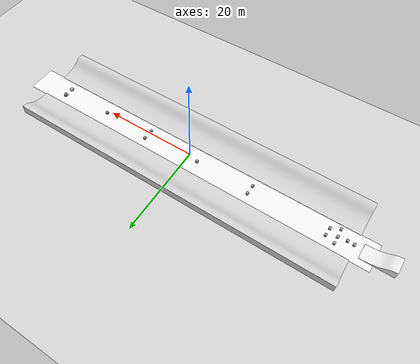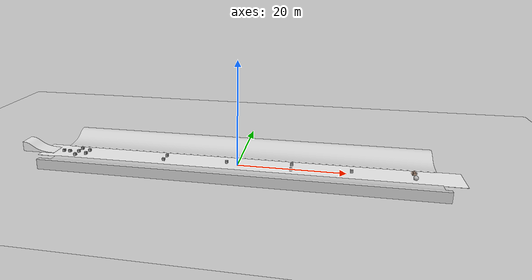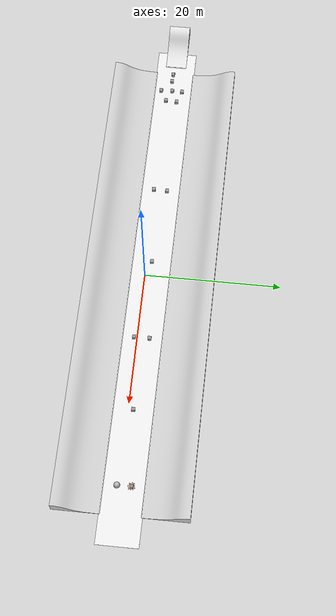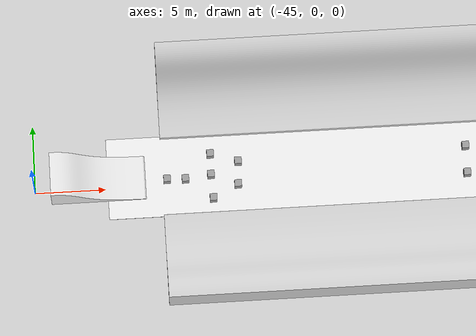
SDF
<sdf version="1.6">
 <world name="default">
  <light name="sun" type="directional">
   <pose>0 0 10 0 -0 0</pose>
   <diffuse>0.8 0.8 0.8 1</diffuse>
   <specular>0.2 0.2 0.2 1</specular>
   <attenuation>
    <range>1000</range>
    <constant>0.9</constant>
    <linear>0.01</linear>
    <quadratic>0.001</quadratic>
   </attenuation>
   <direction>-0.5 0.1 -0.9</direction>
  </light>
  <model name="ground_plane">
   <static>1</static>
   <link name="link">
    <collision name="collision">
     <geometry><plane><normal>0 0 1</normal><size>100 100</size></plane></geometry>
     <surface>
      <contact><collide_bitmask>65535</collide_bitmask></contact>
      <friction><ode><mu>100</mu><mu2>50</mu2></ode></friction>
     </surface>
    </collision>
    <visual name="visual">
     <cast_shadows>0</cast_shadows>
     <geometry><plane><normal>0 0 1</normal><size>100 100</size></plane></geometry>
     <material>
      <ambient>0.9 0.9 0.9 0</ambient>
      <diffuse>0.8 0.8 0.8 0</diffuse>
      <specular>0.1 0.1 0.1 0</specular>
      <emissive>0 0 0 0</emissive>
     </material>
    </visual>
   </link>
  </model>
  <gravity>0 0 -9.8</gravity>
  <magnetic_field>6e-06 2.3e-05 -4.2e-05</magnetic_field>
  <atmosphere type="adiabatic"/>
  <physics name="default_physics" default="0" type="ode">
   <max_step_size>0.001</max_step_size>
   <real_time_factor>1</real_time_factor>
   <real_time_update_rate>1000</real_time_update_rate>
  </physics>
  <scene><ambient>0.4 0.4 0.4 1</ambient><background>0.9 0.9 0.9 1</background><shadows>1</shadows></scene>
  <spherical_coordinates>
   <surface_model>EARTH_WGS84</surface_model>
   <latitude_deg>0</latitude_deg>
   <longitude_deg>0</longitude_deg>
   <elevation>0</elevation>
   <heading_deg>0</heading_deg>
  </spherical_coordinates>
  <model name="road_dashed_two_white">
   <static>1</static>
   <link name="link">
    <collision name="collision"><geometry><box><size>80 6 0.02</size></box></geometry></collision>
    <visual name="visual">
     <cast_shadows>0</cast_shadows>
     <geometry><box><size>80 6 0.02</size></box></geometry>
     <material>
      <script>
       <uri>model://road_dashed_two_white/materials/scripts</uri>
       <uri>model://road_dashed_two_white/materials/textures</uri>
       <name>DashedTwoWhite</name>
      </script>
     </material>
    </visual>
   </link>
   <pose>0.139726 0.762702 0 0 -0 0</pose>
  </model>
  <model name="side_slope">
   <static>1</static>
   <link name="slope_1">
    <collision name="collision">
     <geometry><mesh><uri>model://side_slope/meshes/side_slope.dae</uri><scale>36 1.5 1.5</scale></mesh></geometry>
    </collision>
    <visual name="visual">
     <geometry><mesh><uri>model://side_slope/meshes/side_slope.dae</uri><scale>36 1.5 1.5</scale></mesh></geometry>
     <material>
      <ambient>0.7 0.7 0.7 1</ambient>
      <diffuse>0.8 0.8 0.8 1</diffuse>
      <specular>0.1 0.1 0.1 1</specular>
      <emissive>0 0 0 0</emissive>
     </material>
    </visual>
   </link>
   <link name="slope_2">
    <pose>0 12.3 0 0 -0 -3.14159</pose>
    <collision name="collision">
     <geometry><mesh><uri>model://side_slope/meshes/side_slope.dae</uri><scale>36 1.5 1.5</scale></mesh></geometry>
    </collision>
    <visual name="visual">
     <geometry><mesh><uri>model://side_slope/meshes/side_slope.dae</uri><scale>36 1.5 1.5</scale></mesh></geometry>
     <material>
      <ambient>0.7 0.7 0.7 1</ambient>
      <diffuse>0.8 0.8 0.8 1</diffuse>
      <specular>0.1 0.1 0.1 1</specular>
      <emissive>0 0 0 0</emissive>
     </material>
    </visual>
   </link>
   <pose>0 -5.40299 0 0 -0 0</pose>
  </model>
  <model name="unit_box">
   <pose>31.8605 -0.218029 0.26 0 -0 0</pose>
   <link name="link">
    <inertial>
     <mass>1</mass>
     <inertia>
      <ixx>0.166667</ixx>
      <ixy>0</ixy>
      <ixz>0</ixz>
      <iyy>0.166667</iyy>
      <iyz>0</iyz>
      <izz>0.166667</izz>
     </inertia>
    </inertial>
    <collision name="collision"><geometry><box><size>0.5 0.5 0.5</size></box></geometry></collision>
    <visual name="visual">
     <geometry><box><size>0.5 0.5 0.5</size></box></geometry>
     <material>
      <script><name>Gazebo/Grey</name><uri>file://media/materials/scripts/gazebo.material</uri></script>
     </material>
    </visual>
    <visual name="visual_sphere_cue">
     <geometry><sphere><radius>0.45</radius></sphere></geometry>
     <plugin name="blink" filename="libBlinkVisualPlugin.so">
      <color_a>0 1 0 0.15</color_a>
      <color_b>0 1 0 0.15</color_b>
      <period>2</period>
      <use_wall_time>true</use_wall_time>
     </plugin>
     <material>
      <script><uri>file://media/materials/scripts/gazebo.material</uri><name>__default__</name></script>
     </material>
    </visual>
   </link>
  </model>
  <model name="unit_box_clone">
   <pose>10.0063 -0.431766 0.26 0 -0 0</pose>
   <link name="link">
    <inertial>
     <mass>1</mass>
     <inertia>
      <ixx>0.166667</ixx>
      <ixy>0</ixy>
      <ixz>0</ixz>
      <iyy>0.166667</iyy>
      <iyz>0</iyz>
      <izz>0.166667</izz>
     </inertia>
    </inertial>
    <collision name="collision"><geometry><box><size>0.5 0.5 0.5</size></box></geometry></collision>
    <visual name="visual">
     <geometry><box><size>0.5 0.5 0.5</size></box></geometry>
     <material>
      <script><name>Gazebo/Grey</name><uri>file://media/materials/scripts/gazebo.material</uri></script>
     </material>
    </visual>
   </link>
  </model>
  <model name="unit_box_clone_0">
   <pose>31.861 1.79872 0.26 0 -0 0</pose>
   <link name="link">
    <inertial>
     <mass>1</mass>
     <inertia>
      <ixx>0.166667</ixx>
      <ixy>0</ixy>
      <ixz>0</ixz>
      <iyy>0.166667</iyy>
      <iyz>0</iyz>
      <izz>0.166667</izz>
     </inertia>
    </inertial>
    <collision name="collision"><geometry><box><size>0.5 0.5 0.5</size></box></geometry></collision>
    <visual name="visual">
     <geometry><box><size>0.5 0.5 0.5</size></box></geometry>
     <material>
      <script><name>Gazebo/Grey</name><uri>file://media/materials/scripts/gazebo.material</uri></script>
     </material>
    </visual>
    <visual name="visual_cue">
     <geometry><mesh><uri>model://repelling_cue_2.dae</uri><scale>0.8 0.8 0.8</scale></mesh></geometry>
     <material>
      <ambient>1 0.4 0 0.2</ambient>
      <diffuse>1 0.4 0 0.2</diffuse>
      <specular>1 0.4 0 0.5</specular>
      <emissive>0 0 0 0</emissive>
     </material>
    </visual>
   </link>
  </model>
  <model name="unit_box_clone_1">
   <pose>20.894 0.73493 0.26 0 -0 0</pose>
   <link name="link">
    <inertial>
     <mass>1</mass>
     <inertia>
      <ixx>0.166667</ixx>
      <ixy>0</ixy>
      <ixz>0</ixz>
      <iyy>0.166667</iyy>
      <iyz>0</iyz>
      <izz>0.166667</izz>
     </inertia>
    </inertial>
    <collision name="collision"><geometry><box><size>0.5 0.5 0.5</size></box></geometry></collision>
    <visual name="visual">
     <geometry><box><size>0.5 0.5 0.5</size></box></geometry>
     <material>
      <script><name>Gazebo/Grey</name><uri>file://media/materials/scripts/gazebo.material</uri></script>
     </material>
    </visual>
   </link>
  </model>
  <model name="unit_box_clone_2">
   <pose>-2.26382 0.775278 0.26 0 -0 0</pose>
   <link name="link">
    <inertial>
     <mass>1</mass>
     <inertia>
      <ixx>0.166667</ixx>
      <ixy>0</ixy>
      <ixz>0</ixz>
      <iyy>0.166667</iyy>
      <iyz>0</iyz>
      <izz>0.166667</izz>
     </inertia>
    </inertial>
    <collision name="collision"><geometry><box><size>0.5 0.5 0.5</size></box></geometry></collision>
    <visual name="visual">
     <geometry><box><size>0.5 0.5 0.5</size></box></geometry>
     <material>
      <script><name>Gazebo/Grey</name><uri>file://media/materials/scripts/gazebo.material</uri></script>
     </material>
    </visual>
   </link>
  </model>
  <model name="unit_box_clone_3">
   <pose>9.99396 1.78579 0.26 0 -0 0</pose>
   <link name="link">
    <inertial>
     <mass>1</mass>
     <inertia>
      <ixx>0.166667</ixx>
      <ixy>0</ixy>
      <ixz>0</ixz>
      <iyy>0.166667</iyy>
      <iyz>0</iyz>
      <izz>0.166667</izz>
     </inertia>
    </inertial>
    <collision name="collision"><geometry><box><size>0.5 0.5 0.5</size></box></geometry></collision>
    <visual name="visual">
     <geometry><box><size>0.5 0.5 0.5</size></box></geometry>
     <material>
      <script><name>Gazebo/Grey</name><uri>file://media/materials/scripts/gazebo.material</uri></script>
     </material>
    </visual>
   </link>
  </model>
  <model name="unit_box_clone_4">
   <pose>-14.3827 1.72399 0.26 0 -0 0</pose>
   <link name="link">
    <inertial>
     <mass>1</mass>
     <inertia>
      <ixx>0.166667</ixx>
      <ixy>0</ixy>
      <ixz>0</ixz>
      <iyy>0.166667</iyy>
      <iyz>0</iyz>
      <izz>0.166667</izz>
     </inertia>
    </inertial>
    <collision name="collision"><geometry><box><size>0.5 0.5 0.5</size></box></geometry></collision>
    <visual name="visual">
     <geometry><box><size>0.5 0.5 0.5</size></box></geometry>
     <material>
      <script><name>Gazebo/Grey</name><uri>file://media/materials/scripts/gazebo.material</uri></script>
     </material>
    </visual>
   </link>
  </model>
  <model name="unit_box_clone_5">
   <pose>-14.4278 -0.300483 0.26 0 -0 0</pose>
   <link name="link">
    <inertial>
     <mass>1</mass>
     <inertia>
      <ixx>0.166667</ixx>
      <ixy>0</ixy>
      <ixz>0</ixz>
      <iyy>0.166667</iyy>
      <iyz>0</iyz>
      <izz>0.166667</izz>
     </inertia>
    </inertial>
    <collision name="collision"><geometry><box><size>0.5 0.5 0.5</size></box></geometry></collision>
    <visual name="visual">
     <geometry><box><size>0.5 0.5 0.5</size></box></geometry>
     <material>
      <script><name>Gazebo/Grey</name><uri>file://media/materials/scripts/gazebo.material</uri></script>
     </material>
    </visual>
   </link>
  </model>
  <model name="unit_box_clone_6">
   <pose>-30.655 -0.188792 0.26 0 -0 0</pose>
   <link name="link">
    <inertial>
     <mass>1</mass>
     <inertia>
      <ixx>0.166667</ixx>
      <ixy>0</ixy>
      <ixz>0</ixz>
      <iyy>0.166667</iyy>
      <iyz>0</iyz>
      <izz>0.166667</izz>
     </inertia>
    </inertial>
    <collision name="collision"><geometry><box><size>0.5 0.5 0.5</size></box></geometry></collision>
    <visual name="visual">
     <geometry><box><size>0.5 0.5 0.5</size></box></geometry>
     <material>
      <script><name>Gazebo/Grey</name><uri>file://media/materials/scripts/gazebo.material</uri></script>
     </material>
    </visual>
   </link>
  </model>
  <model name="unit_box_clone_7">
   <pose>-30.5613 1.50909 0.26 0 -0 0</pose>
   <link name="link">
    <inertial>
     <mass>1</mass>
     <inertia>
      <ixx>0.166667</ixx>
      <ixy>0</ixy>
      <ixz>0</ixz>
      <iyy>0.166667</iyy>
      <iyz>0</iyz>
      <izz>0.166667</izz>
     </inertia>
    </inertial>
    <collision name="collision"><geometry><box><size>0.5 0.5 0.5</size></box></geometry></collision>
    <visual name="visual">
     <geometry><box><size>0.5 0.5 0.5</size></box></geometry>
     <material>
      <script><name>Gazebo/Grey</name><uri>file://media/materials/scripts/gazebo.material</uri></script>
     </material>
    </visual>
   </link>
  </model>
  <model name="unit_box_clone_8">
   <pose>-32.4546 -1.12878 0.26 0 -0 0</pose>
   <link name="link">
    <inertial>
     <mass>1</mass>
     <inertia>
      <ixx>0.166667</ixx>
      <ixy>0</ixy>
      <ixz>0</ixz>
      <iyy>0.166667</iyy>
      <iyz>0</iyz>
      <izz>0.166667</izz>
     </inertia>
    </inertial>
    <collision name="collision"><geometry><box><size>0.5 0.5 0.5</size></box></geometry></collision>
    <visual name="visual">
     <geometry><box><size>0.5 0.5 0.5</size></box></geometry>
     <material>
      <script><name>Gazebo/Grey</name><uri>file://media/materials/scripts/gazebo.material</uri></script>
     </material>
    </visual>
   </link>
  </model>
  <model name="unit_box_clone_9">
   <pose>-32.5331 0.632789 0.26 0 -0 0</pose>
   <link name="link">
    <inertial>
     <mass>1</mass>
     <inertia>
      <ixx>0.166667</ixx>
      <ixy>0</ixy>
      <ixz>0</ixz>
      <iyy>0.166667</iyy>
      <iyz>0</iyz>
      <izz>0.166667</izz>
     </inertia>
    </inertial>
    <collision name="collision"><geometry><box><size>0.5 0.5 0.5</size></box></geometry></collision>
    <visual name="visual">
     <geometry><box><size>0.5 0.5 0.5</size></box></geometry>
     <material>
      <script><name>Gazebo/Grey</name><uri>file://media/materials/scripts/gazebo.material</uri></script>
     </material>
    </visual>
   </link>
  </model>
  <model name="unit_box_clone_10">
   <pose>-32.4995 2.1747 0.26 0 -0 0</pose>
   <link name="link">
    <inertial>
     <mass>1</mass>
     <inertia>
      <ixx>0.166667</ixx>
      <ixy>0</ixy>
      <ixz>0</ixz>
      <iyy>0.166667</iyy>
      <iyz>0</iyz>
      <izz>0.166667</izz>
     </inertia>
    </inertial>
    <collision name="collision"><geometry><box><size>0.5 0.5 0.5</size></box></geometry></collision>
    <visual name="visual">
     <geometry><box><size>0.5 0.5 0.5</size></box></geometry>
     <material>
      <script><name>Gazebo/Grey</name><uri>file://media/materials/scripts/gazebo.material</uri></script>
     </material>
    </visual>
   </link>
  </model>
  <model name="unit_box_clone_11">
   <pose>-34.3517 0.410193 0.26 0 -0 0</pose>
   <link name="link">
    <inertial>
     <mass>1</mass>
     <inertia>
      <ixx>0.166667</ixx>
      <ixy>0</ixy>
      <ixz>0</ixz>
      <iyy>0.166667</iyy>
      <iyz>0</iyz>
      <izz>0.166667</izz>
     </inertia>
    </inertial>
    <collision name="collision"><geometry><box><size>0.5 0.5 0.5</size></box></geometry></collision>
    <visual name="visual">
     <geometry><box><size>0.5 0.5 0.5</size></box></geometry>
     <material>
      <script><name>Gazebo/Grey</name><uri>file://media/materials/scripts/gazebo.material</uri></script>
     </material>
    </visual>
   </link>
  </model>
  <model name="unit_box_clone_12">
   <pose>-35.6498 0.455601 0.26 0 -0 0</pose>
   <link name="link">
    <inertial>
     <mass>1</mass>
     <inertia>
      <ixx>0.166667</ixx>
      <ixy>0</ixy>
      <ixz>0</ixz>
      <iyy>0.166667</iyy>
      <iyz>0</iyz>
      <izz>0.166667</izz>
     </inertia>
    </inertial>
    <collision name="collision"><geometry><box><size>0.5 0.5 0.5</size></box></geometry></collision>
    <visual name="visual">
     <geometry><box><size>0.5 0.5 0.5</size></box></geometry>
     <material>
      <script><name>Gazebo/Grey</name><uri>file://media/materials/scripts/gazebo.material</uri></script>
     </material>
    </visual>
   </link>
  </model>
  <model name="side_slope_curve_gap">
   <static>1</static>
   <link name="slope_1">
    <pose>0 0 0 0 0 -1.5707</pose>
    <collision name="collision">
     <geometry>
      <mesh><uri>model://side_slope/meshes/side_slope.dae</uri><scale>1.6 1.5 1.5</scale></mesh>
     </geometry>
    </collision>
    <visual name="visual">
     <geometry>
      <mesh><uri>model://side_slope/meshes/side_slope.dae</uri><scale>1.6 1.5 1.5</scale></mesh>
     </geometry>
     <material>
      <ambient>0.85 0.85 0.85 1</ambient>
      <diffuse>0.9 0.9 0.9 1</diffuse>
      <specular>0.1 0.1 0.1 1</specular>
      <emissive>0 0 0 0</emissive>
     </material>
    </visual>
   </link>
   <pose>-40.5 0.747 0 0 -0 0</pose>
  </model>
 </world>
</sdf>
